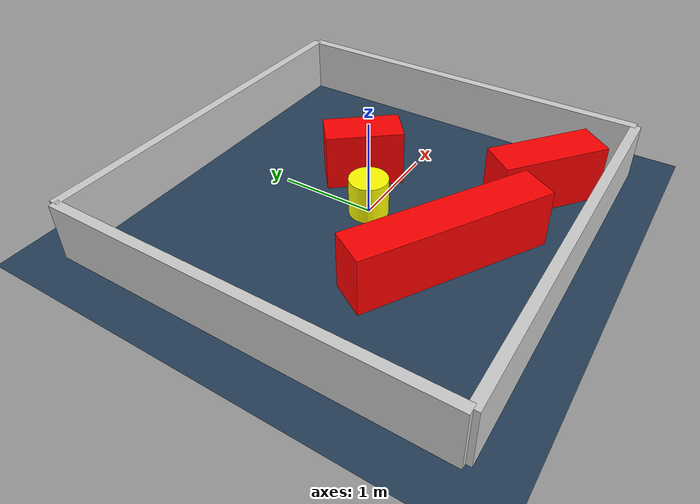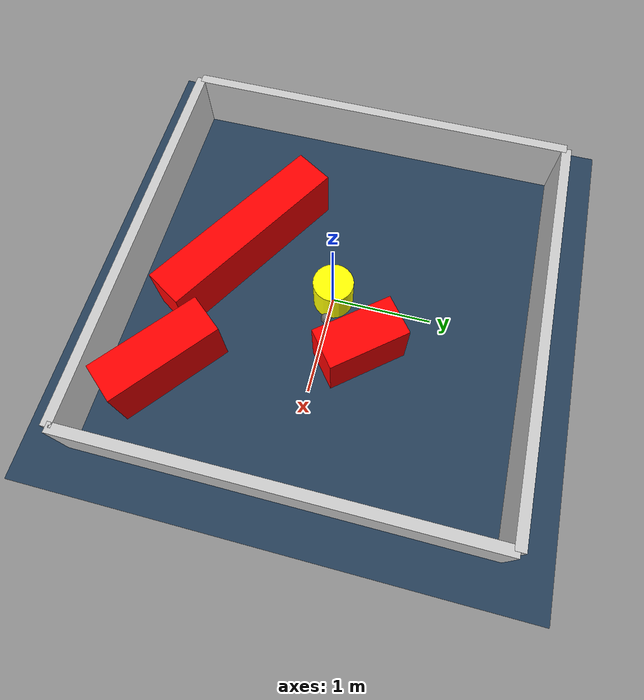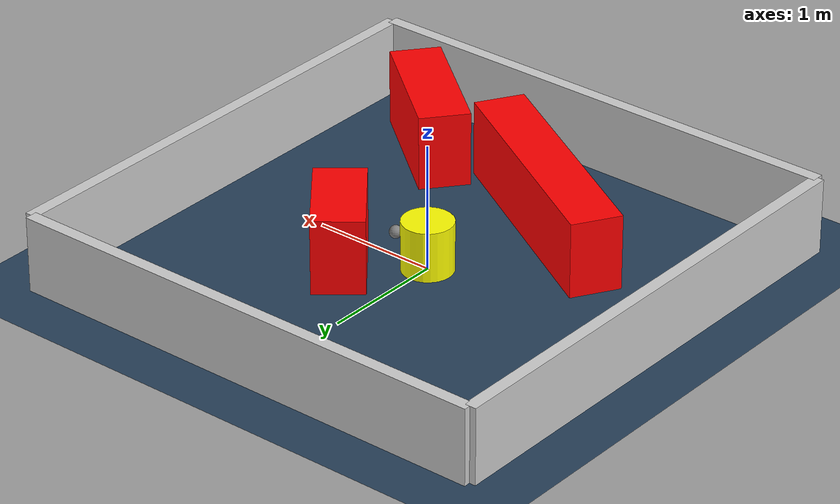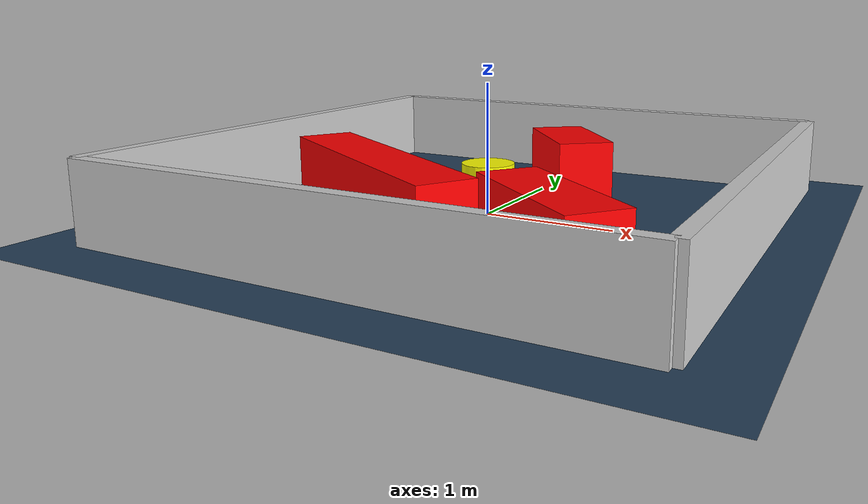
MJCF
<?xml version="1.0" ?>
<mujoco model="generated_environment">
  <option timestep="0.01" integrator="RK4" cone="elliptic"/>
  <default>
    <geom density="1"/>
  </default>
  <asset>
    <texture builtin="gradient" height="3072" rgb1="0.3 0.5 0.7" rgb2="0 0 0" type="skybox" width="512"/>
    <texture builtin="checker" height="300" mark="edge" markrgb="0.8 0.8 0.8" name="groundplane" rgb1="0.2 0.3 0.4" rgb2="0.1 0.2 0.3" type="2d" width="300"/>
    <material name="groundplane" reflectance="0.2" texrepeat="5 5" texture="groundplane" texuniform="true"/>
    <material name="robot" rgba="0.0 1.0 0.0 1"/>
  </asset>
  <worldbody>
    <light dir="0 0 -1" directional="true" pos="0 0 1.5"/>
    <geom condim="4" friction="1.0 0.005 0.001" material="groundplane" name="floor" size="0 0 0.05" type="plane"/>
    <body name="walls">
      <geom name="wall_1" condim="4" pos="-2.0 0.0 0.3" rgba="0.800000011920929 0.800000011920929 0.800000011920929 1.0" size="0.05 2.0 0.3" type="box"/>
      <geom name="wall_2" condim="4" pos="2.0 0.0 0.3" rgba="0.800000011920929 0.800000011920929 0.800000011920929 1.0" size="0.05 2.0 0.3" type="box"/>
      <geom name="wall_3" condim="4" pos="0.0 -2.0 0.3" rgba="0.800000011920929 0.800000011920929 0.800000011920929 1.0" size="2.0 0.05 0.3" type="box"/>
      <geom name="wall_4" condim="4" pos="0.0 2.0 0.3" rgba="0.800000011920929 0.800000011920929 0.800000011920929 1.0" size="2.0 0.05 0.3" type="box"/>
    </body>
    <body name="robot">
      <joint name="joint_x" type="slide" pos="0 0 0" axis="1 0 0"/>
      <joint name="joint_y" type="slide" pos="0 0 0" axis="0 1 0"/>
      <geom name="robot" type="sphere" pos="0.3 0.0 0.2" size="0.05" mass="5." friction="1.0 0.005 0.0001" condim="4" rgba="0.5 0.5 0.5 1.0"/>
      <site name="sensor_ball"/>
    </body>
    <body name="obstacle_movable_1">
      <geom name="obstacle_movable_1" condim="4" pos="0.0 0.0 0.2" euler="0 0 0.0" friction="1.0 0.005 0.001" rgba="1.0 1.0 0.0 1.0" size="0.2 0.2 0.0" type="cylinder" mass="0.1"/>
      <joint type="free"/>
    </body>
    <body name="obstacle_2_static">
      <geom name="obstacle_2_static" condim="4" pos="0.5090171159714267 0.3834688636697756 0.3" euler="0 0 129.19955794796775" friction="1.0 0.005 0.001" rgba="1 0 0 1" size="0.3981366443489463 0.2 0.3" type="box"/>
    </body>
    <body name="obstacle_3_static">
      <geom name="obstacle_3_static" condim="4" pos="1.1111125012224323 -1.3754448250818796 0.3" euler="0 0 320.9604336863467" friction="1.0 0.005 0.001" rgba="1 0 0 1" size="0.5592681579881336 0.2 0.3" type="box"/>
    </body>
    <body name="obstacle_4_static">
      <geom name="obstacle_4_static" condim="4" pos="-0.30179954382724894 -0.9965819312078547 0.3" euler="0 0 329.12956247851884" friction="1.0 0.005 0.001" rgba="1 0 0 1" size="0.9862454872770849 0.2 0.3" type="box"/>
    </body>
  </worldbody>
  <actuator>
    <motor name="actuator_x" joint="joint_x" gear="1" ctrlrange="-1 1"/>
    <motor name="actuator_y" joint="joint_y" gear="1" ctrlrange="-1 1"/>
  </actuator>
</mujoco>
